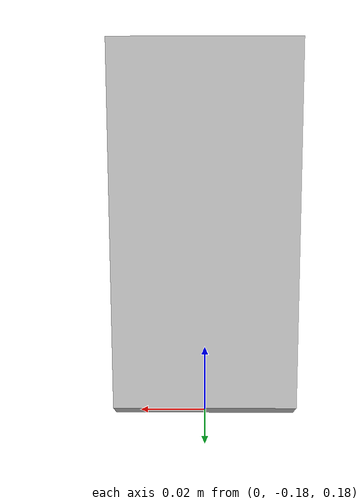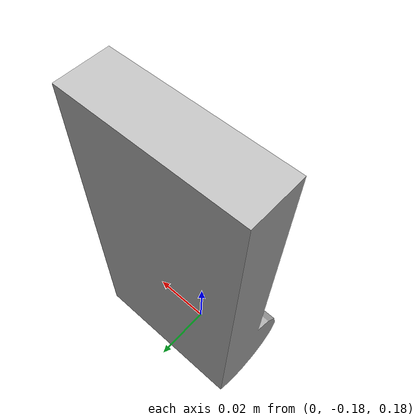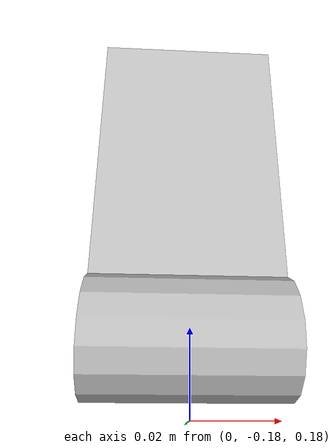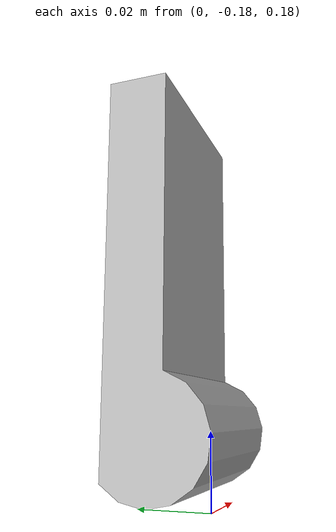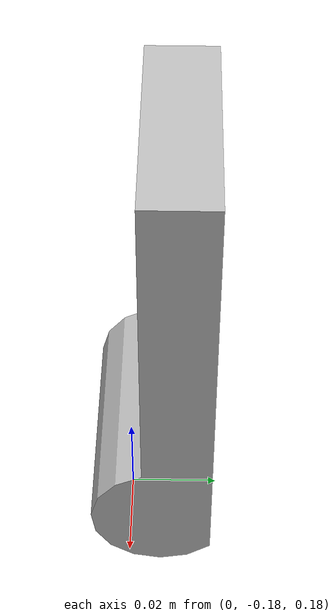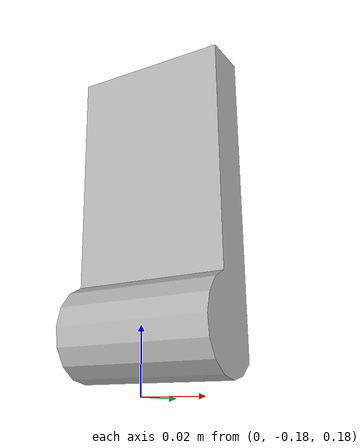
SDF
<?xml version='1.0'?>
<sdf version='1.6'>
    <model name='UWBTag'>
        <plugin name='libgtec_uwb_plugin' filename='libgtec_uwb_plugin.so'>
            <update_rate>25</update_rate>
            <nlosSoftWallWidth>0.25</nlosSoftWallWidth>
            <tag_z_offset>1.5</tag_z_offset>
            <tag_link>tag_0</tag_link>
            <anchor_prefix>uwb_anchor</anchor_prefix>
            <all_los>false</all_los>
            <tag_id>0</tag_id>
        </plugin>

        <static>true</static>

        <link name="base_link">
            <inertial>
                <pose>0 0 0 0 0 0</pose>

                <mass>0.1</mass>
                <inertia>
                    <ixx>0.01</ixx>
                    <ixy>0.0</ixy>
                    <ixz>0.0</ixz>
                    <iyy>0.01</iyy>
                    <iyz>0.0</iyz>
                    <izz>0.01</izz>
                </inertia>
            </inertial>

            <collision name="collision">
                <pose>0 0 0 0 0 0</pose>
                <geometry>
                    <mesh>
                        <uri>file://meshes/Decawave.stl</uri>
                        <scale>1 1 1</scale>
                    </mesh>
                </geometry>
            </collision>

            <visual name="visual">
                <pose>0 0 0 0 0 0</pose>
                <geometry>
                    <mesh>
                        <uri>file://meshes/Decawave.stl</uri>
                        <scale>1 1 1</scale>
                    </mesh>
                </geometry>
            </visual>
        </link>
    </model>
</sdf>
